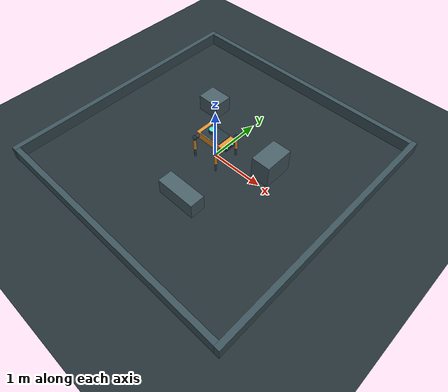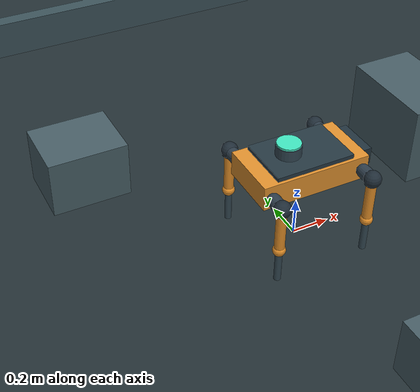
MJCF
<mujoco model="SENTRY whole-body inspection platform">
  <compiler angle="radian"/>

  <option integrator="implicitfast" cone="elliptic" iterations="50"/>

  <statistic extent="1.4" center="0 0 0.25"/>

  <visual>
    <global offwidth="1280" offheight="720"/>
    <headlight ambient="0.35 0.35 0.35" diffuse="0.7 0.7 0.7"/>
  </visual>

  <default>
    <joint armature="0.025" damping="0.25"/>
    <geom solref="0.008"/>
  </default>

  <asset>
    <texture type="2d" colorspace="auto" name="grid" builtin="checker" rgb1="0.12 0.17 0.19" rgb2="0.16 0.21 0.23" width="512" height="512"/>
    <material name="ground" texture="grid" texrepeat="12 12" reflectance="0.08"/>
  </asset>

  <worldbody>
    <geom name="obstacle_0" size="0.18 0.28 0.225" pos="0.95 0.35 0.225" type="box" rgba="0.28 0.37 0.4 1"/>
    <geom name="obstacle_1" size="0.22 0.18 0.16" pos="-0.85 0.85 0.16" type="box" rgba="0.28 0.37 0.4 1"/>
    <geom name="obstacle_2" size="0.38 0.14 0.15" pos="0.3 -1.1 0.15" type="box" rgba="0.28 0.37 0.4 1"/>
    <geom size="0.05 2.5 0.12" pos="2.45 0 0.12" type="box" rgba="0.23 0.32 0.35 1"/>
    <geom size="0.05 2.5 0.12" pos="-2.45 0 0.12" type="box" rgba="0.23 0.32 0.35 1"/>
    <geom size="2.4 0.05 0.12" pos="0 2.45 0.12" type="box" rgba="0.23 0.32 0.35 1"/>
    <geom size="2.4 0.05 0.12" pos="0 -2.45 0.12" type="box" rgba="0.23 0.32 0.35 1"/>
    <geom name="floor" size="5 5 0.1" type="plane" friction="0.8 0.02 0.002" material="ground"/>
    <light pos="1 -2 4" dir="-0.188144 0.282216 -0.940721" diffuse="0.9 0.9 0.85"/>
    <light castshadow="false" pos="-2 1 3" diffuse="0.4 0.55 0.65"/>
    <body name="trunk" pos="0 0 0.435">
      <joint type="free" armature="0" damping="0"/>
      <geom name="chassis" size="0.29 0.16 0.065" type="box" rgba="0.88 0.57 0.18 1" mass="8"/>
      <geom size="0.21 0.145 0.012" pos="0 0 0.075" type="box" rgba="0.15 0.22 0.26 1" mass="0.4"/>
      <geom size="0.035 0.11 0.045" pos="0.305 0 0.015" type="box" rgba="0.13 0.2 0.24 1" mass="0.3"/>
      <geom size="0.017" pos="0.34 0.065 0.025" rgba="0.25 0.95 0.8 1" mass="0.01"/>
      <geom size="0.017" pos="0.34 -0.065 0.025" rgba="0.25 0.95 0.8 1" mass="0.01"/>
      <body name="payload" pos="-0.07 0 0.1">
        <geom size="0.065 0.045" type="cylinder" rgba="0.2 0.28 0.33 1" mass="1.45"/>
        <geom size="0.061 0.01" pos="0 0 0.046" type="cylinder" rgba="0.25 0.9 0.75 1" mass="0.05"/>
      </body>
      <body name="FL_hip" pos="0.25 0.18 0">
        <joint name="FL_abduction" range="-0.7 0.7" axis="1 0 0"/>
        <geom size="0.035 0.0375" pos="0 0.0375 0" quat="0.707107 0.707107 0 0" type="capsule" rgba="0.18 0.24 0.29 1" mass="0.3"/>
        <body name="FL_thigh" pos="0 0.075 0">
          <joint name="FL_pitch" range="-1.6 1.6" axis="0 1 0"/>
          <geom size="0.026 0.125" pos="0 0 -0.125" type="capsule" rgba="0.9 0.57 0.16 1" mass="0.55"/>
          <geom size="0.045" rgba="0.12 0.17 0.21 1" mass="0.05"/>
          <body name="FL_shin" pos="0 0 -0.25">
            <joint name="FL_knee" range="0.1 2.6" axis="0 1 0"/>
            <geom size="0.018 0.125" pos="0 0 -0.125" type="capsule" rgba="0.2 0.28 0.32 1" mass="0.3"/>
            <geom size="0.033" rgba="0.9 0.57 0.16 1" mass="0.05"/>
            <geom name="FL_foot" size="0.026" pos="0 0 -0.25" friction="0.8 0.02 0.002" rgba="0.07 0.1 0.12 1" mass="0.08"/>
            <site name="FL_toe" size="0.008" pos="0 0 -0.25" rgba="0.3 0.9 0.7 1"/>
          </body>
        </body>
      </body>
      <body name="FR_hip" pos="0.25 -0.18 0">
        <joint name="FR_abduction" range="-0.7 0.7" axis="1 0 0"/>
        <geom size="0.035 0.0375" pos="0 -0.0375 0" quat="0.707107 -0.707107 0 0" type="capsule" rgba="0.18 0.24 0.29 1" mass="0.3"/>
        <body name="FR_thigh" pos="0 -0.075 0">
          <joint name="FR_pitch" range="-1.6 1.6" axis="0 1 0"/>
          <geom size="0.026 0.125" pos="0 0 -0.125" type="capsule" rgba="0.9 0.57 0.16 1" mass="0.55"/>
          <geom size="0.045" rgba="0.12 0.17 0.21 1" mass="0.05"/>
          <body name="FR_shin" pos="0 0 -0.25">
            <joint name="FR_knee" range="0.1 2.6" axis="0 1 0"/>
            <geom size="0.018 0.125" pos="0 0 -0.125" type="capsule" rgba="0.2 0.28 0.32 1" mass="0.3"/>
            <geom size="0.033" rgba="0.9 0.57 0.16 1" mass="0.05"/>
            <geom name="FR_foot" size="0.026" pos="0 0 -0.25" friction="0.8 0.02 0.002" rgba="0.07 0.1 0.12 1" mass="0.08"/>
            <site name="FR_toe" size="0.008" pos="0 0 -0.25" rgba="0.3 0.9 0.7 1"/>
          </body>
        </body>
      </body>
      <body name="RL_hip" pos="-0.25 0.18 0">
        <joint name="RL_abduction" range="-0.7 0.7" axis="1 0 0"/>
        <geom size="0.035 0.0375" pos="0 0.0375 0" quat="0.707107 0.707107 0 0" type="capsule" rgba="0.18 0.24 0.29 1" mass="0.3"/>
        <body name="RL_thigh" pos="0 0.075 0">
          <joint name="RL_pitch" range="-1.6 1.6" axis="0 1 0"/>
          <geom size="0.026 0.125" pos="0 0 -0.125" type="capsule" rgba="0.9 0.57 0.16 1" mass="0.55"/>
          <geom size="0.045" rgba="0.12 0.17 0.21 1" mass="0.05"/>
          <body name="RL_shin" pos="0 0 -0.25">
            <joint name="RL_knee" range="0.1 2.6" axis="0 1 0"/>
            <geom size="0.018 0.125" pos="0 0 -0.125" type="capsule" rgba="0.2 0.28 0.32 1" mass="0.3"/>
            <geom size="0.033" rgba="0.9 0.57 0.16 1" mass="0.05"/>
            <geom name="RL_foot" size="0.026" pos="0 0 -0.25" friction="0.8 0.02 0.002" rgba="0.07 0.1 0.12 1" mass="0.08"/>
            <site name="RL_toe" size="0.008" pos="0 0 -0.25" rgba="0.3 0.9 0.7 1"/>
          </body>
        </body>
      </body>
      <body name="RR_hip" pos="-0.25 -0.18 0">
        <joint name="RR_abduction" range="-0.7 0.7" axis="1 0 0"/>
        <geom size="0.035 0.0375" pos="0 -0.0375 0" quat="0.707107 -0.707107 0 0" type="capsule" rgba="0.18 0.24 0.29 1" mass="0.3"/>
        <body name="RR_thigh" pos="0 -0.075 0">
          <joint name="RR_pitch" range="-1.6 1.6" axis="0 1 0"/>
          <geom size="0.026 0.125" pos="0 0 -0.125" type="capsule" rgba="0.9 0.57 0.16 1" mass="0.55"/>
          <geom size="0.045" rgba="0.12 0.17 0.21 1" mass="0.05"/>
          <body name="RR_shin" pos="0 0 -0.25">
            <joint name="RR_knee" range="0.1 2.6" axis="0 1 0"/>
            <geom size="0.018 0.125" pos="0 0 -0.125" type="capsule" rgba="0.2 0.28 0.32 1" mass="0.3"/>
            <geom size="0.033" rgba="0.9 0.57 0.16 1" mass="0.05"/>
            <geom name="RR_foot" size="0.026" pos="0 0 -0.25" friction="0.8 0.02 0.002" rgba="0.07 0.1 0.12 1" mass="0.08"/>
            <site name="RR_toe" size="0.008" pos="0 0 -0.25" rgba="0.3 0.9 0.7 1"/>
          </body>
        </body>
      </body>
    </body>
  </worldbody>

  <actuator>
    <general name="FL_abduction_motor" joint="FL_abduction" ctrlrange="-32 32"/>
    <general name="FL_pitch_motor" joint="FL_pitch" ctrlrange="-32 32"/>
    <general name="FL_knee_motor" joint="FL_knee" ctrlrange="-32 32"/>
    <general name="FR_abduction_motor" joint="FR_abduction" ctrlrange="-32 32"/>
    <general name="FR_pitch_motor" joint="FR_pitch" ctrlrange="-32 32"/>
    <general name="FR_knee_motor" joint="FR_knee" ctrlrange="-32 32"/>
    <general name="RL_abduction_motor" joint="RL_abduction" ctrlrange="-32 32"/>
    <general name="RL_pitch_motor" joint="RL_pitch" ctrlrange="-32 32"/>
    <general name="RL_knee_motor" joint="RL_knee" ctrlrange="-32 32"/>
    <general name="RR_abduction_motor" joint="RR_abduction" ctrlrange="-32 32"/>
    <general name="RR_pitch_motor" joint="RR_pitch" ctrlrange="-32 32"/>
    <general name="RR_knee_motor" joint="RR_knee" ctrlrange="-32 32"/>
  </actuator>
</mujoco>
